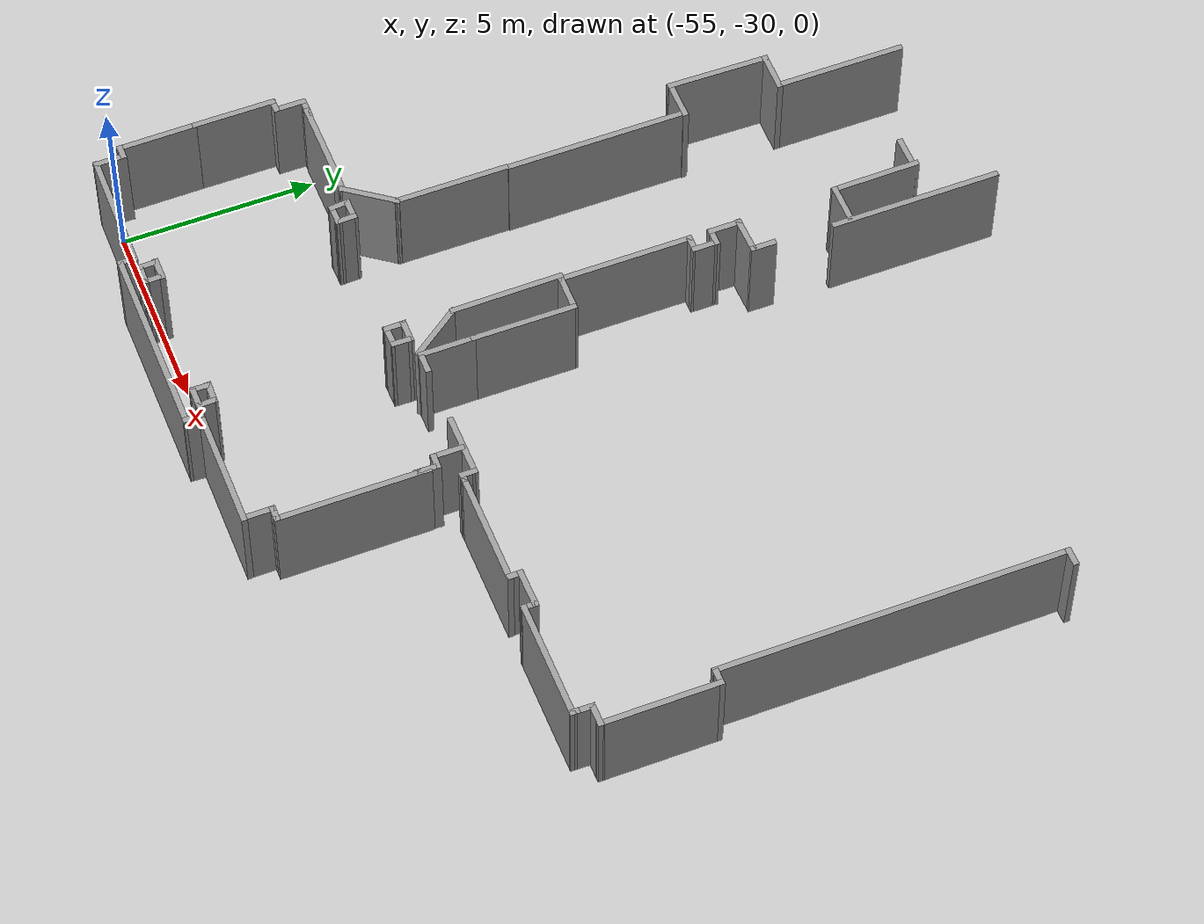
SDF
<sdf version="1.7">
 <model name="TD1-Mapa">
  <pose>-6.249136 -5.50363 0 0 -0 0</pose>
  <link name="Wall_1">
   <collision name="Wall_1_Collision">
    <geometry><box><size>4.431935 0.15 2.5</size></box></geometry>
    <pose>0 0 1.25 0 -0 0</pose>
   </collision>
   <visual name="Wall_1_Visual">
    <pose>0 0 1.25 0 -0 0</pose>
    <geometry><box><size>4.431935 0.15 2.5</size></box></geometry>
    <material>
     <script><uri>file://media/materials/scripts/gazebo.material</uri><name>Gazebo/Grey</name></script>
     <ambient>1 1 1 1</ambient>
    </material>
    <meta><layer>0</layer></meta>
   </visual>
   <pose>-41.074739 -6.4312363 0 0 -0 1.57083</pose>
  </link>
  <link name="Wall_104">
   <collision name="Wall_104_Collision">
    <geometry><box><size>2.919735 0.15 2.5</size></box></geometry>
    <pose>0 0 1.25 0 -0 0</pose>
   </collision>
   <visual name="Wall_104_Visual">
    <pose>0 0 1.25 0 -0 0</pose>
    <geometry><box><size>2.919735 0.15 2.5</size></box></geometry>
    <material>
     <script><uri>file://media/materials/scripts/gazebo.material</uri><name>Gazebo/Grey</name></script>
     <ambient>1 1 1 1</ambient>
    </material>
    <meta><layer>0</layer></meta>
   </visual>
   <pose>-42.06833 -16.77593 0 0 -0 -1.561431</pose>
  </link>
  <link name="Wall_105">
   <collision name="Wall_105_Collision">
    <geometry><box><size>1.637439 0.15 2.5</size></box></geometry>
    <pose>0 0 1.25 0 -0 0</pose>
   </collision>
   <visual name="Wall_105_Visual">
    <pose>0 0 1.25 0 -0 0</pose>
    <geometry><box><size>1.637439 0.15 2.5</size></box></geometry>
    <material>
     <script><uri>file://media/materials/scripts/gazebo.material</uri><name>Gazebo/Grey</name></script>
     <ambient>1 1 1 1</ambient>
    </material>
    <meta><layer>0</layer></meta>
   </visual>
   <pose>-41.61323 -18.75873 0 0 -0 -0.9342383</pose>
  </link>
  <link name="Wall_107">
   <collision name="Wall_107_Collision">
    <geometry><box><size>0.671535 0.15 2.5</size></box></geometry>
    <pose>0 0 1.25 0 -0 0</pose>
   </collision>
   <visual name="Wall_107_Visual">
    <pose>0 0 1.25 0 -0 0</pose>
    <geometry><box><size>0.671535 0.15 2.5</size></box></geometry>
    <material>
     <script><uri>file://media/materials/scripts/gazebo.material</uri><name>Gazebo/Grey</name></script>
     <ambient>1 1 1 1</ambient>
    </material>
    <meta><layer>0</layer></meta>
   </visual>
   <pose>-46.76213 -19.38283 0 0 -0 -0.0499353</pose>
  </link>
  <link name="Wall_108">
   <collision name="Wall_108_Collision">
    <geometry><box><size>1.55433 0.15 2.5</size></box></geometry>
    <pose>0 0 1.25 0 -0 0</pose>
   </collision>
   <visual name="Wall_108_Visual">
    <pose>0 0 1.25 0 -0 0</pose>
    <geometry><box><size>1.55433 0.15 2.5</size></box></geometry>
    <material>
     <script><uri>file://media/materials/scripts/gazebo.material</uri><name>Gazebo/Grey</name></script>
     <ambient>1 1 1 1</ambient>
    </material>
    <meta><layer>0</layer></meta>
   </visual>
   <pose>-46.086 -18.83023 0 0 -0 0.9365353</pose>
  </link>
  <link name="Wall_109">
   <collision name="Wall_109_Collision">
    <geometry><box><size>2.984439 0.15 2.5</size></box></geometry>
    <pose>0 0 1.25 0 -0 0</pose>
   </collision>
   <visual name="Wall_109_Visual">
    <pose>0 0 1.25 0 -0 0</pose>
    <geometry><box><size>2.984439 0.15 2.5</size></box></geometry>
    <material>
     <script><uri>file://media/materials/scripts/gazebo.material</uri><name>Gazebo/Grey</name></script>
     <ambient>1 1 1 1</ambient>
    </material>
    <meta><layer>0</layer></meta>
   </visual>
   <pose>-45.66993 -16.84743 0 0 -0 1.57083</pose>
  </link>
  <link name="Wall_111">
   <collision name="Wall_111_Collision">
    <geometry><box><size>4.700738 0.15 2.5</size></box></geometry>
    <pose>0 0 1.25 0 -0 0</pose>
   </collision>
   <visual name="Wall_111_Visual">
    <pose>0 0 1.25 0 -0 0</pose>
    <geometry><box><size>4.700738 0.15 2.5</size></box></geometry>
    <material>
     <script><uri>file://media/materials/scripts/gazebo.material</uri><name>Gazebo/Grey</name></script>
     <ambient>1 1 1 1</ambient>
    </material>
    <meta><layer>0</layer></meta>
   </visual>
   <pose>-45.648 -13.03523 0 0 -0 1.57083</pose>
  </link>
  <link name="Wall_113">
   <collision name="Wall_113_Collision">
    <geometry><box><size>1.099532 0.15 2.5</size></box></geometry>
    <pose>0 0 1.25 0 -0 0</pose>
   </collision>
   <visual name="Wall_113_Visual">
    <pose>0 0 1.25 0 -0 0</pose>
    <geometry><box><size>1.099532 0.15 2.5</size></box></geometry>
    <material>
     <script><uri>file://media/materials/scripts/gazebo.material</uri><name>Gazebo/Grey</name></script>
     <ambient>1 1 1 1</ambient>
    </material>
    <meta><layer>0</layer></meta>
   </visual>
   <pose>-46.09663 -10.66883 0 0 -0 3.141539</pose>
  </link>
  <link name="Wall_114">
   <collision name="Wall_114_Collision">
    <geometry><box><size>2.686134 0.15 2.5</size></box></geometry>
    <pose>0 0 1.25 0 -0 0</pose>
   </collision>
   <visual name="Wall_114_Visual">
    <pose>0 0 1.25 0 -0 0</pose>
    <geometry><box><size>2.686134 0.15 2.5</size></box></geometry>
    <material>
     <script><uri>file://media/materials/scripts/gazebo.material</uri><name>Gazebo/Grey</name></script>
     <ambient>1 1 1 1</ambient>
    </material>
    <meta><layer>0</layer></meta>
   </visual>
   <pose>-46.54843 -9.400933 0 0 -0 1.552837</pose>
  </link>
  <link name="Wall_115">
   <collision name="Wall_115_Collision">
    <geometry><box><size>1.0744323 0.15 2.5</size></box></geometry>
    <pose>0 0 1.25 0 -0 0</pose>
   </collision>
   <visual name="Wall_115_Visual">
    <pose>0 0 1.25 0 -0 0</pose>
    <geometry><box><size>1.0744323 0.15 2.5</size></box></geometry>
    <material>
     <script><uri>file://media/materials/scripts/gazebo.material</uri><name>Gazebo/Grey</name></script>
     <ambient>1 1 1 1</ambient>
    </material>
    <meta><layer>0</layer></meta>
   </visual>
   <pose>-46.06363 -8.129536 0 0 -0 -0.006431</pose>
  </link>
  <link name="Wall_117">
   <collision name="Wall_117_Collision">
    <geometry><box><size>3.296832 0.15 2.5</size></box></geometry>
    <pose>0 0 1.25 0 -0 0</pose>
   </collision>
   <visual name="Wall_117_Visual">
    <pose>0 0 1.25 0 -0 0</pose>
    <geometry><box><size>3.296832 0.15 2.5</size></box></geometry>
    <material>
     <script><uri>file://media/materials/scripts/gazebo.material</uri><name>Gazebo/Grey</name></script>
     <ambient>1 1 1 1</ambient>
    </material>
    <meta><layer>0</layer></meta>
   </visual>
   <pose>-45.60853 -6.4315303 0 0 -0 1.57083</pose>
  </link>
  <link name="Wall_17">
   <collision name="Wall_17_Collision">
    <geometry><box><size>0.4964333 0.15 2.5</size></box></geometry>
    <pose>0 0 1.25 0 -0 0</pose>
   </collision>
   <visual name="Wall_17_Visual">
    <pose>0 0 1.25 0 -0 0</pose>
    <geometry><box><size>0.4964333 0.15 2.5</size></box></geometry>
    <material>
     <script><uri>file://media/materials/scripts/gazebo.material</uri><name>Gazebo/Grey</name></script>
     <ambient>1 1 1 1</ambient>
    </material>
    <meta><layer>0</layer></meta>
   </visual>
   <pose>-30.24243 -7.304738 0 0 -0 -3.134935</pose>
  </link>
  <link name="Wall_20">
   <collision name="Wall_20_Collision">
    <geometry><box><size>9 0.15 2.5</size></box></geometry>
    <pose>0 0 1.25 0 -0 0</pose>
   </collision>
   <visual name="Wall_20_Visual">
    <pose>0 0 1.25 0 -0 0</pose>
    <geometry><box><size>9 0.15 2.5</size></box></geometry>
    <material>
     <script><uri>file://media/materials/scripts/gazebo.material</uri><name>Gazebo/Grey</name></script>
     <ambient>1 1 1 1</ambient>
    </material>
    <meta><layer>0</layer></meta>
   </visual>
   <pose>-30.41513 -11.73093 0 0 -0 -1.57083</pose>
  </link>
  <link name="Wall_21">
   <collision name="Wall_21_Collision">
    <geometry><box><size>0.5 0.15 2.5</size></box></geometry>
    <pose>0 0 1.25 0 -0 0</pose>
   </collision>
   <visual name="Wall_21_Visual">
    <pose>0 0 1.25 0 -0 0</pose>
    <geometry><box><size>0.5 0.15 2.5</size></box></geometry>
    <material>
     <script><uri>file://media/materials/scripts/gazebo.material</uri><name>Gazebo/Grey</name></script>
     <ambient>1 1 1 1</ambient>
    </material>
    <meta><layer>0</layer></meta>
   </visual>
   <pose>-30.24013 -16.15593 0 0 -0 0</pose>
  </link>
  <link name="Wall_23">
   <collision name="Wall_23_Collision">
    <geometry><box><size>3.099538 0.15 2.5</size></box></geometry>
    <pose>0 0 1.25 0 -0 0</pose>
   </collision>
   <visual name="Wall_23_Visual">
    <pose>0 0 1.25 0 -0 0</pose>
    <geometry><box><size>3.099538 0.15 2.5</size></box></geometry>
    <material>
     <script><uri>file://media/materials/scripts/gazebo.material</uri><name>Gazebo/Grey</name></script>
     <ambient>1 1 1 1</ambient>
    </material>
    <meta><layer>0</layer></meta>
   </visual>
   <pose>-30.06363 -17.63073 0 0 -0 -1.569736</pose>
  </link>
  <link name="Wall_24">
   <collision name="Wall_24_Collision">
    <geometry><box><size>0.6344383 0.15 2.5</size></box></geometry>
    <pose>0 0 1.25 0 -0 0</pose>
   </collision>
   <visual name="Wall_24_Visual">
    <pose>0 0 1.25 0 -0 0</pose>
    <geometry><box><size>0.6344383 0.15 2.5</size></box></geometry>
    <material>
     <script><uri>file://media/materials/scripts/gazebo.material</uri><name>Gazebo/Grey</name></script>
     <ambient>1 1 1 1</ambient>
    </material>
    <meta><layer>0</layer></meta>
   </visual>
   <pose>-30.30433 -19.10553 0 0 -0 3.141539</pose>
  </link>
  <link name="Wall_25">
   <collision name="Wall_25_Collision">
    <geometry><box><size>0.5361313 0.15 2.5</size></box></geometry>
    <pose>0 0 1.25 0 -0 0</pose>
   </collision>
   <visual name="Wall_25_Visual">
    <pose>0 0 1.25 0 -0 0</pose>
    <geometry><box><size>0.5361313 0.15 2.5</size></box></geometry>
    <material>
     <script><uri>file://media/materials/scripts/gazebo.material</uri><name>Gazebo/Grey</name></script>
     <ambient>1 1 1 1</ambient>
    </material>
    <meta><layer>0</layer></meta>
   </visual>
   <pose>-30.55153 -19.29833 0 0 -0 -1.596433</pose>
  </link>
  <link name="Wall_26">
   <collision name="Wall_26_Collision">
    <geometry><box><size>0.25 0.15 2.5</size></box></geometry>
    <pose>0 0 1.25 0 -0 0</pose>
   </collision>
   <visual name="Wall_26_Visual">
    <pose>0 0 1.25 0 -0 0</pose>
    <geometry><box><size>0.25 0.15 2.5</size></box></geometry>
    <material>
     <script><uri>file://media/materials/scripts/gazebo.material</uri><name>Gazebo/Grey</name></script>
     <ambient>1 1 1 1</ambient>
    </material>
    <meta><layer>0</layer></meta>
   </visual>
   <pose>-30.55653 -19.54113 0 0 -0 -1.57083</pose>
  </link>
  <link name="Wall_27">
   <collision name="Wall_27_Collision">
    <geometry><box><size>3.165731 0.15 2.5</size></box></geometry>
    <pose>0 0 1.25 0 -0 0</pose>
   </collision>
   <visual name="Wall_27_Visual">
    <pose>0 0 1.25 0 -0 0</pose>
    <geometry><box><size>3.165731 0.15 2.5</size></box></geometry>
    <material>
     <script><uri>file://media/materials/scripts/gazebo.material</uri><name>Gazebo/Grey</name></script>
     <ambient>1 1 1 1</ambient>
    </material>
    <meta><layer>0</layer></meta>
   </visual>
   <pose>-32.06433 -19.59553 0 0 -0 -3.138639</pose>
  </link>
  <link name="Wall_28">
   <collision name="Wall_28_Collision">
    <geometry><box><size>0.4270323 0.15 2.5</size></box></geometry>
    <pose>0 0 1.25 0 -0 0</pose>
   </collision>
   <visual name="Wall_28_Visual">
    <pose>0 0 1.25 0 -0 0</pose>
    <geometry><box><size>0.4270323 0.15 2.5</size></box></geometry>
    <material>
     <script><uri>file://media/materials/scripts/gazebo.material</uri><name>Gazebo/Grey</name></script>
     <ambient>1 1 1 1</ambient>
    </material>
    <meta><layer>0</layer></meta>
   </visual>
   <pose>-33.56723 -19.46143 0 0 -0 1.53513</pose>
  </link>
  <link name="Wall_29">
   <collision name="Wall_29_Collision">
    <geometry><box><size>1.051531 0.15 2.5</size></box></geometry>
    <pose>0 0 1.25 0 -0 0</pose>
   </collision>
   <visual name="Wall_29_Visual">
    <pose>0 0 1.25 0 -0 0</pose>
    <geometry><box><size>1.051531 0.15 2.5</size></box></geometry>
    <material>
     <script><uri>file://media/materials/scripts/gazebo.material</uri><name>Gazebo/Grey</name></script>
     <ambient>1 1 1 1</ambient>
    </material>
    <meta><layer>0</layer></meta>
   </visual>
   <pose>-34.02283 -19.328 0 0 -0 -3.130633</pose>
  </link>
  <link name="Wall_30">
   <collision name="Wall_30_Collision">
    <geometry><box><size>0.4236353 0.15 2.5</size></box></geometry>
    <pose>0 0 1.25 0 -0 0</pose>
   </collision>
   <visual name="Wall_30_Visual">
    <pose>0 0 1.25 0 -0 0</pose>
    <geometry><box><size>0.4236353 0.15 2.5</size></box></geometry>
    <material>
     <script><uri>file://media/materials/scripts/gazebo.material</uri><name>Gazebo/Grey</name></script>
     <ambient>1 1 1 1</ambient>
    </material>
    <meta><layer>0</layer></meta>
   </visual>
   <pose>-34.47313 -19.46643 0 0 -0 -1.567332</pose>
  </link>
  <link name="Wall_34">
   <collision name="Wall_34_Collision">
    <geometry><box><size>3.0748333 0.15 2.5</size></box></geometry>
    <pose>0 0 1.25 0 -0 0</pose>
   </collision>
   <visual name="Wall_34_Visual">
    <pose>0 0 1.25 0 -0 0</pose>
    <geometry><box><size>3.0748333 0.15 2.5</size></box></geometry>
    <material>
     <script><uri>file://media/materials/scripts/gazebo.material</uri><name>Gazebo/Grey</name></script>
     <ambient>1 1 1 1</ambient>
    </material>
    <meta><layer>0</layer></meta>
   </visual>
   <pose>-35.92373 -19.62153 0 0 -0 -3.137733</pose>
  </link>
  <link name="Wall_35">
   <collision name="Wall_35_Collision">
    <geometry><box><size>0.2743363 0.15 2.5</size></box></geometry>
    <pose>0 0 1.25 0 -0 0</pose>
   </collision>
   <visual name="Wall_35_Visual">
    <pose>0 0 1.25 0 -0 0</pose>
    <geometry><box><size>0.2743363 0.15 2.5</size></box></geometry>
    <material>
     <script><uri>file://media/materials/scripts/gazebo.material</uri><name>Gazebo/Grey</name></script>
     <ambient>1 1 1 1</ambient>
    </material>
    <meta><layer>0</layer></meta>
   </visual>
   <pose>-37.45 -19.62723 0 0 -0 3.141539</pose>
  </link>
  <link name="Wall_36">
   <collision name="Wall_36_Collision">
    <geometry><box><size>0.4553323 0.15 2.5</size></box></geometry>
    <pose>0 0 1.25 0 -0 0</pose>
   </collision>
   <visual name="Wall_36_Visual">
    <pose>0 0 1.25 0 -0 0</pose>
    <geometry><box><size>0.4553323 0.15 2.5</size></box></geometry>
    <material>
     <script><uri>file://media/materials/scripts/gazebo.material</uri><name>Gazebo/Grey</name></script>
     <ambient>1 1 1 1</ambient>
    </material>
    <meta><layer>0</layer></meta>
   </visual>
   <pose>-37.51223 -19.47463 0 0 -0 1.57083</pose>
  </link>
  <link name="Wall_38">
   <collision name="Wall_38_Collision">
    <geometry><box><size>1.714731 0.15 2.5</size></box></geometry>
    <pose>0 0 1.25 0 -0 0</pose>
   </collision>
   <visual name="Wall_38_Visual">
    <pose>0 0 1.25 0 -0 0</pose>
    <geometry><box><size>1.714731 0.15 2.5</size></box></geometry>
    <material>
     <script><uri>file://media/materials/scripts/gazebo.material</uri><name>Gazebo/Grey</name></script>
     <ambient>1 1 1 1</ambient>
    </material>
    <meta><layer>0</layer></meta>
   </visual>
   <pose>-38.29463 -19.32613 0 0 -0 -3.136232</pose>
  </link>
  <link name="Wall_40">
   <collision name="Wall_40_Collision">
    <geometry><box><size>0.6135353 0.15 2.5</size></box></geometry>
    <pose>0 0 1.25 0 -0 0</pose>
   </collision>
   <visual name="Wall_40_Visual">
    <pose>0 0 1.25 0 -0 0</pose>
    <geometry><box><size>0.6135353 0.15 2.5</size></box></geometry>
    <material>
     <script><uri>file://media/materials/scripts/gazebo.material</uri><name>Gazebo/Grey</name></script>
     <ambient>1 1 1 1</ambient>
    </material>
    <meta><layer>0</layer></meta>
   </visual>
   <pose>-40.88033 -19.33033 0 0 -0 3.141539</pose>
  </link>
  <link name="Wall_41">
   <collision name="Wall_41_Collision">
    <geometry><box><size>1.5 0.15 2.5</size></box></geometry>
    <pose>0 0 1.25 0 -0 0</pose>
   </collision>
   <visual name="Wall_41_Visual">
    <pose>0 0 1.25 0 -0 0</pose>
    <geometry><box><size>1.5 0.15 2.5</size></box></geometry>
    <material>
     <script><uri>file://media/materials/scripts/gazebo.material</uri><name>Gazebo/Grey</name></script>
     <ambient>1 1 1 1</ambient>
    </material>
    <meta><layer>0</layer></meta>
   </visual>
   <pose>-41.112 -18.65533 0 0 -0 1.57083</pose>
  </link>
  <link name="Wall_43">
   <collision name="Wall_43_Collision">
    <geometry><box><size>2.726833 0.15 2.5</size></box></geometry>
    <pose>0 0 1.25 0 -0 0</pose>
   </collision>
   <visual name="Wall_43_Visual">
    <pose>0 0 1.25 0 -0 0</pose>
    <geometry><box><size>2.726833 0.15 2.5</size></box></geometry>
    <material>
     <script><uri>file://media/materials/scripts/gazebo.material</uri><name>Gazebo/Grey</name></script>
     <ambient>1 1 1 1</ambient>
    </material>
    <meta><layer>0</layer></meta>
   </visual>
   <pose>-41.10653 -16.692 0 0 -0 1.566437</pose>
  </link>
  <link name="Wall_44">
   <collision name="Wall_44_Collision">
    <geometry><box><size>1.036937 0.15 2.5</size></box></geometry>
    <pose>0 0 1.25 0 -0 0</pose>
   </collision>
   <visual name="Wall_44_Visual">
    <pose>0 0 1.25 0 -0 0</pose>
    <geometry><box><size>1.036937 0.15 2.5</size></box></geometry>
    <material>
     <script><uri>file://media/materials/scripts/gazebo.material</uri><name>Gazebo/Grey</name></script>
     <ambient>1 1 1 1</ambient>
    </material>
    <meta><layer>0</layer></meta>
   </visual>
   <pose>-41.54443 -15.39793 0 0 -0 3.128737</pose>
  </link>
  <link name="Wall_46">
   <collision name="Wall_46_Collision">
    <geometry><box><size>3.5 0.15 2.5</size></box></geometry>
    <pose>0 0 1.25 0 -0 0</pose>
   </collision>
   <visual name="Wall_46_Visual">
    <pose>0 0 1.25 0 -0 0</pose>
    <geometry><box><size>3.5 0.15 2.5</size></box></geometry>
    <material>
     <script><uri>file://media/materials/scripts/gazebo.material</uri><name>Gazebo/Grey</name></script>
     <ambient>1 1 1 1</ambient>
    </material>
    <meta><layer>0</layer></meta>
   </visual>
   <pose>-41.98783 -13.71723 0 0 -0 1.57083</pose>
  </link>
  <link name="Wall_47">
   <collision name="Wall_47_Collision">
    <geometry><box><size>0.5 0.15 2.5</size></box></geometry>
    <pose>0 0 1.25 0 -0 0</pose>
   </collision>
   <visual name="Wall_47_Visual">
    <pose>0 0 1.25 0 -0 0</pose>
    <geometry><box><size>0.5 0.15 2.5</size></box></geometry>
    <material>
     <script><uri>file://media/materials/scripts/gazebo.material</uri><name>Gazebo/Grey</name></script>
     <ambient>1 1 1 1</ambient>
    </material>
    <meta><layer>0</layer></meta>
   </visual>
   <pose>-41.81283 -12.04223 0 0 -0 0</pose>
  </link>
  <link name="Wall_48">
   <collision name="Wall_48_Collision">
    <geometry><box><size>0.7220323 0.15 2.5</size></box></geometry>
    <pose>0 0 1.25 0 -0 0</pose>
   </collision>
   <visual name="Wall_48_Visual">
    <pose>0 0 1.25 0 -0 0</pose>
    <geometry><box><size>0.7220323 0.15 2.5</size></box></geometry>
    <material>
     <script><uri>file://media/materials/scripts/gazebo.material</uri><name>Gazebo/Grey</name></script>
     <ambient>1 1 1 1</ambient>
    </material>
    <meta><layer>0</layer></meta>
   </visual>
   <pose>-41.63733 -11.75663 0 0 -0 1.569134</pose>
  </link>
  <link name="Wall_49">
   <collision name="Wall_49_Collision">
    <geometry><box><size>0.51093 0.15 2.5</size></box></geometry>
    <pose>0 0 1.25 0 -0 0</pose>
   </collision>
   <visual name="Wall_49_Visual">
    <pose>0 0 1.25 0 -0 0</pose>
    <geometry><box><size>0.51093 0.15 2.5</size></box></geometry>
    <material>
     <script><uri>file://media/materials/scripts/gazebo.material</uri><name>Gazebo/Grey</name></script>
     <ambient>1 1 1 1</ambient>
    </material>
    <meta><layer>0</layer></meta>
   </visual>
   <pose>-41.81733 -11.471 0 0 -0 3.141539</pose>
  </link>
  <link name="Wall_52">
   <collision name="Wall_52_Collision">
    <geometry><box><size>0.8899303 0.15 2.5</size></box></geometry>
    <pose>0 0 1.25 0 -0 0</pose>
   </collision>
   <visual name="Wall_52_Visual">
    <pose>0 0 1.25 0 -0 0</pose>
    <geometry><box><size>0.8899303 0.15 2.5</size></box></geometry>
    <material>
     <script><uri>file://media/materials/scripts/gazebo.material</uri><name>Gazebo/Grey</name></script>
     <ambient>1 1 1 1</ambient>
    </material>
    <meta><layer>0</layer></meta>
   </visual>
   <pose>-41.99783 -11.10153 0 0 -0 1.57083</pose>
  </link>
  <link name="Wall_53">
   <collision name="Wall_53_Collision">
    <geometry><box><size>1.015538 0.15 2.5</size></box></geometry>
    <pose>0 0 1.25 0 -0 0</pose>
   </collision>
   <visual name="Wall_53_Visual">
    <pose>0 0 1.25 0 -0 0</pose>
    <geometry><box><size>1.015538 0.15 2.5</size></box></geometry>
    <material>
     <script><uri>file://media/materials/scripts/gazebo.material</uri><name>Gazebo/Grey</name></script>
     <ambient>1 1 1 1</ambient>
    </material>
    <meta><layer>0</layer></meta>
   </visual>
   <pose>-41.58233 -10.72333 0 0 -0 0.019938</pose>
  </link>
  <link name="Wall_54">
   <collision name="Wall_54_Collision">
    <geometry><box><size>0.6740363 0.15 2.5</size></box></geometry>
    <pose>0 0 1.25 0 -0 0</pose>
   </collision>
   <visual name="Wall_54_Visual">
    <pose>0 0 1.25 0 -0 0</pose>
    <geometry><box><size>0.6740363 0.15 2.5</size></box></geometry>
    <material>
     <script><uri>file://media/materials/scripts/gazebo.material</uri><name>Gazebo/Grey</name></script>
     <ambient>1 1 1 1</ambient>
    </material>
    <meta><layer>0</layer></meta>
   </visual>
   <pose>-41.13123 -10.45263 0 0 -0 1.566439</pose>
  </link>
  <link name="Wall_56">
   <collision name="Wall_56_Collision">
    <geometry><box><size>1.0743313 0.15 2.5</size></box></geometry>
    <pose>0 0 1.25 0 -0 0</pose>
   </collision>
   <visual name="Wall_56_Visual">
    <pose>0 0 1.25 0 -0 0</pose>
    <geometry><box><size>1.0743313 0.15 2.5</size></box></geometry>
    <material>
     <script><uri>file://media/materials/scripts/gazebo.material</uri><name>Gazebo/Grey</name></script>
     <ambient>1 1 1 1</ambient>
    </material>
    <meta><layer>0</layer></meta>
   </visual>
   <pose>-41.61313 -8.14323 0 0 -0 3.141539</pose>
  </link>
  <link name="Wall_58">
   <collision name="Wall_58_Collision">
    <geometry><box><size>2.324 0.15 2.5</size></box></geometry>
    <pose>0 0 1.25 0 -0 0</pose>
   </collision>
   <visual name="Wall_58_Visual">
    <pose>0 0 1.25 0 -0 0</pose>
    <geometry><box><size>2.324 0.15 2.5</size></box></geometry>
    <material>
     <script><uri>file://media/materials/scripts/gazebo.material</uri><name>Gazebo/Grey</name></script>
     <ambient>1 1 1 1</ambient>
    </material>
    <meta><layer>0</layer></meta>
   </visual>
   <pose>-42.087 -7.056237 0 0 -0 1.582139</pose>
  </link>
  <link name="Wall_61">
   <collision name="Wall_61_Collision">
    <geometry><box><size>0.9009333 0.15 2.5</size></box></geometry>
    <pose>0 0 1.25 0 -0 0</pose>
   </collision>
   <visual name="Wall_61_Visual">
    <pose>0 0 1.25 0 -0 0</pose>
    <geometry><box><size>0.9009333 0.15 2.5</size></box></geometry>
    <material>
     <script><uri>file://media/materials/scripts/gazebo.material</uri><name>Gazebo/Grey</name></script>
     <ambient>1 1 1 1</ambient>
    </material>
    <meta><layer>0</layer></meta>
   </visual>
   <pose>-42.47453 -6.045837 0 0 -0 0.0032333</pose>
  </link>
  <link name="Wall_814">
   <collision name="Wall_814_Collision">
    <geometry><box><size>2.256836 0.15 2.5</size></box></geometry>
    <pose>0 0 1.25 0 -0 0</pose>
   </collision>
   <visual name="Wall_814_Visual">
    <pose>0 0 1.25 0 -0 0</pose>
    <geometry><box><size>2.256836 0.15 2.5</size></box></geometry>
    <material>
     <script><uri>file://media/materials/scripts/gazebo.material</uri><name>Gazebo/Grey</name></script>
     <ambient>1 1 1 1</ambient>
    </material>
    <meta><layer>0</layer></meta>
   </visual>
   <pose>-48.074535 -19.37593 0 0 -0 0.0057343</pose>
  </link>
  <link name="Wall_816">
   <collision name="Wall_816_Collision">
    <geometry><box><size>0.5029383 0.15 2.5</size></box></geometry>
    <pose>0 0 1.25 0 -0 0</pose>
   </collision>
   <visual name="Wall_816_Visual">
    <pose>0 0 1.25 0 -0 0</pose>
    <geometry><box><size>0.5029383 0.15 2.5</size></box></geometry>
    <material>
     <script><uri>file://media/materials/scripts/gazebo.material</uri><name>Gazebo/Grey</name></script>
     <ambient>1 1 1 1</ambient>
    </material>
    <meta><layer>0</layer></meta>
   </visual>
   <pose>-49.19283 -19.36693 0 0 -0 0</pose>
  </link>
  <link name="Wall_818">
   <collision name="Wall_818_Collision">
    <geometry><box><size>0.8559363 0.15 2.5</size></box></geometry>
    <pose>0 0 1.25 0 -0 0</pose>
   </collision>
   <visual name="Wall_818_Visual">
    <pose>0 0 1.25 0 -0 0</pose>
    <geometry><box><size>0.8559363 0.15 2.5</size></box></geometry>
    <material>
     <script><uri>file://media/materials/scripts/gazebo.material</uri><name>Gazebo/Grey</name></script>
     <ambient>1 1 1 1</ambient>
    </material>
    <meta><layer>0</layer></meta>
   </visual>
   <pose>-49.44443 -19.72743 0 0 -0 -1.57083</pose>
  </link>
  <link name="Wall_819">
   <collision name="Wall_819_Collision">
    <geometry><box><size>0.4203363 0.15 2.5</size></box></geometry>
    <pose>0 0 1.25 0 -0 0</pose>
   </collision>
   <visual name="Wall_819_Visual">
    <pose>0 0 1.25 0 -0 0</pose>
    <geometry><box><size>0.4203363 0.15 2.5</size></box></geometry>
    <material>
     <script><uri>file://media/materials/scripts/gazebo.material</uri><name>Gazebo/Grey</name></script>
     <ambient>1 1 1 1</ambient>
    </material>
    <meta><layer>0</layer></meta>
   </visual>
   <pose>-49.57963 -20.08043 0 0 -0 3.141539</pose>
  </link>
  <link name="Wall_820">
   <collision name="Wall_820_Collision">
    <geometry><box><size>2.177737 0.15 2.5</size></box></geometry>
    <pose>0 0 1.25 0 -0 0</pose>
   </collision>
   <visual name="Wall_820_Visual">
    <pose>0 0 1.25 0 -0 0</pose>
    <geometry><box><size>2.177737 0.15 2.5</size></box></geometry>
    <material>
     <script><uri>file://media/materials/scripts/gazebo.material</uri><name>Gazebo/Grey</name></script>
     <ambient>1 1 1 1</ambient>
    </material>
    <meta><layer>0</layer></meta>
   </visual>
   <pose>-49.71483 -21.09433 0 0 -0 -1.57083</pose>
  </link>
  <link name="Wall_823">
   <collision name="Wall_823_Collision">
    <geometry><box><size>0.15 0.15 2.5</size></box></geometry>
    <pose>0 0 1.25 0 -0 0</pose>
   </collision>
   <visual name="Wall_823_Visual">
    <pose>0 0 1.25 0 -0 0</pose>
    <geometry><box><size>0.15 0.15 2.5</size></box></geometry>
    <material>
     <script><uri>file://media/materials/scripts/gazebo.material</uri><name>Gazebo/Grey</name></script>
     <ambient>1 1 1 1</ambient>
    </material>
    <meta><layer>0</layer></meta>
   </visual>
   <pose>-49.69973 -24.074538 0 0 -0 0</pose>
  </link>
  <link name="Wall_825">
   <collision name="Wall_825_Collision">
    <geometry><box><size>2.117734 0.15 2.5</size></box></geometry>
    <pose>0 0 1.25 0 -0 0</pose>
   </collision>
   <visual name="Wall_825_Visual">
    <pose>0 0 1.25 0 -0 0</pose>
    <geometry><box><size>2.117734 0.15 2.5</size></box></geometry>
    <material>
     <script><uri>file://media/materials/scripts/gazebo.material</uri><name>Gazebo/Grey</name></script>
     <ambient>1 1 1 1</ambient>
    </material>
    <meta><layer>0</layer></meta>
   </visual>
   <pose>-49.70723 -23.092 0 0 -0 -1.563136</pose>
  </link>
  <link name="Wall_826">
   <collision name="Wall_826_Collision">
    <geometry><box><size>0.410034 0.15 2.5</size></box></geometry>
    <pose>0 0 1.25 0 -0 0</pose>
   </collision>
   <visual name="Wall_826_Visual">
    <pose>0 0 1.25 0 -0 0</pose>
    <geometry><box><size>0.410034 0.15 2.5</size></box></geometry>
    <material>
     <script><uri>file://media/materials/scripts/gazebo.material</uri><name>Gazebo/Grey</name></script>
     <ambient>1 1 1 1</ambient>
    </material>
    <meta><layer>0</layer></meta>
   </visual>
   <pose>-49.56973 -24.074535 0 0 -0 0.0024373</pose>
  </link>
  <link name="Wall_827">
   <collision name="Wall_827_Collision">
    <geometry><box><size>0.8423373 0.15 2.5</size></box></geometry>
    <pose>0 0 1.25 0 -0 0</pose>
   </collision>
   <visual name="Wall_827_Visual">
    <pose>0 0 1.25 0 -0 0</pose>
    <geometry><box><size>0.8423373 0.15 2.5</size></box></geometry>
    <material>
     <script><uri>file://media/materials/scripts/gazebo.material</uri><name>Gazebo/Grey</name></script>
     <ambient>1 1 1 1</ambient>
    </material>
    <meta><layer>0</layer></meta>
   </visual>
   <pose>-49.431937 -24.42133 0 0 -0 -1.57083</pose>
  </link>
  <link name="Wall_828">
   <collision name="Wall_828_Collision">
    <geometry><box><size>3.258834 0.15 2.5</size></box></geometry>
    <pose>0 0 1.25 0 -0 0</pose>
   </collision>
   <visual name="Wall_828_Visual">
    <pose>0 0 1.25 0 -0 0</pose>
    <geometry><box><size>3.258834 0.15 2.5</size></box></geometry>
    <material>
     <script><uri>file://media/materials/scripts/gazebo.material</uri><name>Gazebo/Grey</name></script>
     <ambient>1 1 1 1</ambient>
    </material>
    <meta><layer>0</layer></meta>
   </visual>
   <pose>-47.88543 -24.787 0 0 -0 -0.0126303</pose>
  </link>
  <link name="Wall_829">
   <collision name="Wall_829_Collision">
    <geometry><box><size>0.5028393 0.15 2.5</size></box></geometry>
    <pose>0 0 1.25 0 -0 0</pose>
   </collision>
   <visual name="Wall_829_Visual">
    <pose>0 0 1.25 0 -0 0</pose>
    <geometry><box><size>0.5028393 0.15 2.5</size></box></geometry>
    <material>
     <script><uri>file://media/materials/scripts/gazebo.material</uri><name>Gazebo/Grey</name></script>
     <ambient>1 1 1 1</ambient>
    </material>
    <meta><layer>0</layer></meta>
   </visual>
   <pose>-46.33113 -24.983 0 0 -0 -1.57083</pose>
  </link>
  <link name="Wall_830">
   <collision name="Wall_830_Collision">
    <geometry><box><size>5.113239 0.15 2.5</size></box></geometry>
    <pose>0 0 1.25 0 -0 0</pose>
   </collision>
   <visual name="Wall_830_Visual">
    <pose>0 0 1.25 0 -0 0</pose>
    <geometry><box><size>5.113239 0.15 2.5</size></box></geometry>
    <material>
     <script><uri>file://media/materials/scripts/gazebo.material</uri><name>Gazebo/Grey</name></script>
     <ambient>1 1 1 1</ambient>
    </material>
    <meta><layer>0</layer></meta>
   </visual>
   <pose>-43.84953 -25.15933 0 0 -0 0</pose>
  </link>
  <link name="Wall_831">
   <collision name="Wall_831_Collision">
    <geometry><box><size>0.5287373 0.15 2.5</size></box></geometry>
    <pose>0 0 1.25 0 -0 0</pose>
   </collision>
   <visual name="Wall_831_Visual">
    <pose>0 0 1.25 0 -0 0</pose>
    <geometry><box><size>0.5287373 0.15 2.5</size></box></geometry>
    <material>
     <script><uri>file://media/materials/scripts/gazebo.material</uri><name>Gazebo/Grey</name></script>
     <ambient>1 1 1 1</ambient>
    </material>
    <meta><layer>0</layer></meta>
   </visual>
   <pose>-41.36133 -24.96993 0 0 -0 1.536333</pose>
  </link>
  <link name="Wall_832">
   <collision name="Wall_832_Collision">
    <geometry><box><size>3.271638 0.15 2.5</size></box></geometry>
    <pose>0 0 1.25 0 -0 0</pose>
   </collision>
   <visual name="Wall_832_Visual">
    <pose>0 0 1.25 0 -0 0</pose>
    <geometry><box><size>3.271638 0.15 2.5</size></box></geometry>
    <material>
     <script><uri>file://media/materials/scripts/gazebo.material</uri><name>Gazebo/Grey</name></script>
     <ambient>1 1 1 1</ambient>
    </material>
    <meta><layer>0</layer></meta>
   </visual>
   <pose>-39.79393 -24.787 0 0 -0 -0.0041383</pose>
  </link>
  <link name="Wall_833">
   <collision name="Wall_833_Collision">
    <geometry><box><size>0.868439 0.15 2.5</size></box></geometry>
    <pose>0 0 1.25 0 -0 0</pose>
   </collision>
   <visual name="Wall_833_Visual">
    <pose>0 0 1.25 0 -0 0</pose>
    <geometry><box><size>0.868439 0.15 2.5</size></box></geometry>
    <material>
     <script><uri>file://media/materials/scripts/gazebo.material</uri><name>Gazebo/Grey</name></script>
     <ambient>1 1 1 1</ambient>
    </material>
    <meta><layer>0</layer></meta>
   </visual>
   <pose>-38.24313 -24.431434 0 0 -0 1.57083</pose>
  </link>
  <link name="Wall_834">
   <collision name="Wall_834_Collision">
    <geometry><box><size>0.43173333 0.15 2.5</size></box></geometry>
    <pose>0 0 1.25 0 -0 0</pose>
   </collision>
   <visual name="Wall_834_Visual">
    <pose>0 0 1.25 0 -0 0</pose>
    <geometry><box><size>0.43173333 0.15 2.5</size></box></geometry>
    <material>
     <script><uri>file://media/materials/scripts/gazebo.material</uri><name>Gazebo/Grey</name></script>
     <ambient>1 1 1 1</ambient>
    </material>
    <meta><layer>0</layer></meta>
   </visual>
   <pose>-38.08943 -24.074532 0 0 -0 0</pose>
  </link>
  <link name="Wall_835">
   <collision name="Wall_835_Collision">
    <geometry><box><size>3.911636 0.15 2.5</size></box></geometry>
    <pose>0 0 1.25 0 -0 0</pose>
   </collision>
   <visual name="Wall_835_Visual">
    <pose>0 0 1.25 0 -0 0</pose>
    <geometry><box><size>3.911636 0.15 2.5</size></box></geometry>
    <material>
     <script><uri>file://media/materials/scripts/gazebo.material</uri><name>Gazebo/Grey</name></script>
     <ambient>1 1 1 1</ambient>
    </material>
    <meta><layer>0</layer></meta>
   </visual>
   <pose>-37.94573 -22.19443 0 0 -0 1.57083</pose>
  </link>
  <link name="Wall_837">
   <collision name="Wall_837_Collision">
    <geometry><box><size>0.8427343 0.15 2.5</size></box></geometry>
    <pose>0 0 1.25 0 -0 0</pose>
   </collision>
   <visual name="Wall_837_Visual">
    <pose>0 0 1.25 0 -0 0</pose>
    <geometry><box><size>0.8427343 0.15 2.5</size></box></geometry>
    <material>
     <script><uri>file://media/materials/scripts/gazebo.material</uri><name>Gazebo/Grey</name></script>
     <ambient>1 1 1 1</ambient>
    </material>
    <meta><layer>0</layer></meta>
   </visual>
   <pose>-38.24623 -19.71933 0 0 -0 -1.57083</pose>
  </link>
  <link name="Wall_838">
   <collision name="Wall_838_Collision">
    <geometry><box><size>0.43173333 0.15 2.5</size></box></geometry>
    <pose>0 0 1.25 0 -0 0</pose>
   </collision>
   <visual name="Wall_838_Visual">
    <pose>0 0 1.25 0 -0 0</pose>
    <geometry><box><size>0.43173333 0.15 2.5</size></box></geometry>
    <material>
     <script><uri>file://media/materials/scripts/gazebo.material</uri><name>Gazebo/Grey</name></script>
     <ambient>1 1 1 1</ambient>
    </material>
    <meta><layer>0</layer></meta>
   </visual>
   <pose>-38.10253 -20.074139 0 0 -0 -0.0454323</pose>
  </link>
  <link name="Wall_839">
   <collision name="Wall_839_Collision">
    <geometry><box><size>0.6731303 0.15 2.5</size></box></geometry>
    <pose>0 0 1.25 0 -0 0</pose>
   </collision>
   <visual name="Wall_839_Visual">
    <pose>0 0 1.25 0 -0 0</pose>
    <geometry><box><size>0.6731303 0.15 2.5</size></box></geometry>
    <material>
     <script><uri>file://media/materials/scripts/gazebo.material</uri><name>Gazebo/Grey</name></script>
     <ambient>1 1 1 1</ambient>
    </material>
    <meta><layer>0</layer></meta>
   </visual>
   <pose>-37.96533 -20.33973 0 0 -0 -1.595739</pose>
  </link>
  <link name="Wall_841">
   <collision name="Wall_841_Collision">
    <geometry><box><size>0.6475373 0.15 2.5</size></box></geometry>
    <pose>0 0 1.25 0 -0 0</pose>
   </collision>
   <visual name="Wall_841_Visual">
    <pose>0 0 1.25 0 -0 0</pose>
    <geometry><box><size>0.6475373 0.15 2.5</size></box></geometry>
    <material>
     <script><uri>file://media/materials/scripts/gazebo.material</uri><name>Gazebo/Grey</name></script>
     <ambient>1 1 1 1</ambient>
    </material>
    <meta><layer>0</layer></meta>
   </visual>
   <pose>-41.88753 -19.40143 0 0 -0 -0.0149323</pose>
  </link>
  <link name="Wall_842">
   <collision name="Wall_842_Collision">
    <geometry><box><size>0.5733323 0.15 2.5</size></box></geometry>
    <pose>0 0 1.25 0 -0 0</pose>
   </collision>
   <visual name="Wall_842_Visual">
    <pose>0 0 1.25 0 -0 0</pose>
    <geometry><box><size>0.5733323 0.15 2.5</size></box></geometry>
    <material>
     <script><uri>file://media/materials/scripts/gazebo.material</uri><name>Gazebo/Grey</name></script>
     <ambient>1 1 1 1</ambient>
    </material>
    <meta><layer>0</layer></meta>
   </visual>
   <pose>-41.64253 -19.61683 0 0 -0 -1.588334</pose>
  </link>
  <link name="Wall_843">
   <collision name="Wall_843_Collision">
    <geometry><box><size>0.6327323 0.15 2.5</size></box></geometry>
    <pose>0 0 1.25 0 -0 0</pose>
   </collision>
   <visual name="Wall_843_Visual">
    <pose>0 0 1.25 0 -0 0</pose>
    <geometry><box><size>0.6327323 0.15 2.5</size></box></geometry>
    <material>
     <script><uri>file://media/materials/scripts/gazebo.material</uri><name>Gazebo/Grey</name></script>
     <ambient>1 1 1 1</ambient>
    </material>
    <meta><layer>0</layer></meta>
   </visual>
   <pose>-41.88753 -19.83213 0 0 -0 -3.126231</pose>
  </link>
  <link name="Wall_844">
   <collision name="Wall_844_Collision">
    <geometry><box><size>0.5658333 0.15 2.5</size></box></geometry>
    <pose>0 0 1.25 0 -0 0</pose>
   </collision>
   <visual name="Wall_844_Visual">
    <pose>0 0 1.25 0 -0 0</pose>
    <geometry><box><size>0.5658333 0.15 2.5</size></box></geometry>
    <material>
     <script><uri>file://media/materials/scripts/gazebo.material</uri><name>Gazebo/Grey</name></script>
     <ambient>1 1 1 1</ambient>
    </material>
    <meta><layer>0</layer></meta>
   </visual>
   <pose>-42.12883 -19.62793 0 0 -0 1.57083</pose>
  </link>
  <link name="Wall_846">
   <collision name="Wall_846_Collision">
    <geometry><box><size>0.6106333 0.15 2.5</size></box></geometry>
    <pose>0 0 1.25 0 -0 0</pose>
   </collision>
   <visual name="Wall_846_Visual">
    <pose>0 0 1.25 0 -0 0</pose>
    <geometry><box><size>0.6106333 0.15 2.5</size></box></geometry>
    <material>
     <script><uri>file://media/materials/scripts/gazebo.material</uri><name>Gazebo/Grey</name></script>
     <ambient>1 1 1 1</ambient>
    </material>
    <meta><layer>0</layer></meta>
   </visual>
   <pose>-45.83433 -19.41633 0 0 -0 0.0161323</pose>
  </link>
  <link name="Wall_847">
   <collision name="Wall_847_Collision">
    <geometry><box><size>0.5586383 0.15 2.5</size></box></geometry>
    <pose>0 0 1.25 0 -0 0</pose>
   </collision>
   <visual name="Wall_847_Visual">
    <pose>0 0 1.25 0 -0 0</pose>
    <geometry><box><size>0.5586383 0.15 2.5</size></box></geometry>
    <material>
     <script><uri>file://media/materials/scripts/gazebo.material</uri><name>Gazebo/Grey</name></script>
     <ambient>1 1 1 1</ambient>
    </material>
    <meta><layer>0</layer></meta>
   </visual>
   <pose>-45.59663 -19.61683 0 0 -0 -1.534435</pose>
  </link>
  <link name="Wall_848">
   <collision name="Wall_848_Collision">
    <geometry><box><size>0.5881373 0.15 2.5</size></box></geometry>
    <pose>0 0 1.25 0 -0 0</pose>
   </collision>
   <visual name="Wall_848_Visual">
    <pose>0 0 1.25 0 -0 0</pose>
    <geometry><box><size>0.5881373 0.15 2.5</size></box></geometry>
    <material>
     <script><uri>file://media/materials/scripts/gazebo.material</uri><name>Gazebo/Grey</name></script>
     <ambient>1 1 1 1</ambient>
    </material>
    <meta><layer>0</layer></meta>
   </visual>
   <pose>-45.80833 -19.82473 0 0 -0 -3.124635</pose>
  </link>
  <link name="Wall_849">
   <collision name="Wall_849_Collision">
    <geometry><box><size>0.492837 0.15 2.5</size></box></geometry>
    <pose>0 0 1.25 0 -0 0</pose>
   </collision>
   <visual name="Wall_849_Visual">
    <pose>0 0 1.25 0 -0 0</pose>
    <geometry><box><size>0.492837 0.15 2.5</size></box></geometry>
    <material>
     <script><uri>file://media/materials/scripts/gazebo.material</uri><name>Gazebo/Grey</name></script>
     <ambient>1 1 1 1</ambient>
    </material>
    <meta><layer>0</layer></meta>
   </visual>
   <pose>-46.04963 -19.65763 0 0 -0 1.657533</pose>
  </link>
  <link name="Wall_851">
   <collision name="Wall_851_Collision">
    <geometry><box><size>0.6327323 0.15 2.5</size></box></geometry>
    <pose>0 0 1.25 0 -0 0</pose>
   </collision>
   <visual name="Wall_851_Visual">
    <pose>0 0 1.25 0 -0 0</pose>
    <geometry><box><size>0.6327323 0.15 2.5</size></box></geometry>
    <material>
     <script><uri>file://media/materials/scripts/gazebo.material</uri><name>Gazebo/Grey</name></script>
     <ambient>1 1 1 1</ambient>
    </material>
    <meta><layer>0</layer></meta>
   </visual>
   <pose>-45.82313 -24.35063 0 0 -0 0</pose>
  </link>
  <link name="Wall_852">
   <collision name="Wall_852_Collision">
    <geometry><box><size>0.5732363 0.15 2.5</size></box></geometry>
    <pose>0 0 1.25 0 -0 0</pose>
   </collision>
   <visual name="Wall_852_Visual">
    <pose>0 0 1.25 0 -0 0</pose>
    <geometry><box><size>0.5732363 0.15 2.5</size></box></geometry>
    <material>
     <script><uri>file://media/materials/scripts/gazebo.material</uri><name>Gazebo/Grey</name></script>
     <ambient>1 1 1 1</ambient>
    </material>
    <meta><layer>0</layer></meta>
   </visual>
   <pose>-45.58183 -24.56233 0 0 -0 -1.57083</pose>
  </link>
  <link name="Wall_853">
   <collision name="Wall_853_Collision">
    <geometry><box><size>0.6030323 0.15 2.5</size></box></geometry>
    <pose>0 0 1.25 0 -0 0</pose>
   </collision>
   <visual name="Wall_853_Visual">
    <pose>0 0 1.25 0 -0 0</pose>
    <geometry><box><size>0.6030323 0.15 2.5</size></box></geometry>
    <material>
     <script><uri>file://media/materials/scripts/gazebo.material</uri><name>Gazebo/Grey</name></script>
     <ambient>1 1 1 1</ambient>
    </material>
    <meta><layer>0</layer></meta>
   </visual>
   <pose>-45.80833 -24.76653 0 0 -0 3.108832</pose>
  </link>
  <link name="Wall_854">
   <collision name="Wall_854_Collision">
    <geometry><box><size>0.5438343 0.15 2.5</size></box></geometry>
    <pose>0 0 1.25 0 -0 0</pose>
   </collision>
   <visual name="Wall_854_Visual">
    <pose>0 0 1.25 0 -0 0</pose>
    <geometry><box><size>0.5438343 0.15 2.5</size></box></geometry>
    <material>
     <script><uri>file://media/materials/scripts/gazebo.material</uri><name>Gazebo/Grey</name></script>
     <ambient>1 1 1 1</ambient>
    </material>
    <meta><layer>0</layer></meta>
   </visual>
   <pose>-46.03853 -24.56233 0 0 -0 1.589636</pose>
  </link>
  <link name="Wall_856">
   <collision name="Wall_856_Collision">
    <geometry><box><size>0.6253303 0.15 2.5</size></box></geometry>
    <pose>0 0 1.25 0 -0 0</pose>
   </collision>
   <visual name="Wall_856_Visual">
    <pose>0 0 1.25 0 -0 0</pose>
    <geometry><box><size>0.6253303 0.15 2.5</size></box></geometry>
    <material>
     <script><uri>file://media/materials/scripts/gazebo.material</uri><name>Gazebo/Grey</name></script>
     <ambient>1 1 1 1</ambient>
    </material>
    <meta><layer>0</layer></meta>
   </visual>
   <pose>-41.89873 -24.34323 0 0 -0 -0.031234</pose>
  </link>
  <link name="Wall_857">
   <collision name="Wall_857_Collision">
    <geometry><box><size>0.529 0.15 2.5</size></box></geometry>
    <pose>0 0 1.25 0 -0 0</pose>
   </collision>
   <visual name="Wall_857_Visual">
    <pose>0 0 1.25 0 -0 0</pose>
    <geometry><box><size>0.529 0.15 2.5</size></box></geometry>
    <material>
     <script><uri>file://media/materials/scripts/gazebo.material</uri><name>Gazebo/Grey</name></script>
     <ambient>1 1 1 1</ambient>
    </material>
    <meta><layer>0</layer></meta>
   </visual>
   <pose>-41.65363 -24.54 0 0 -0 -1.53163</pose>
  </link>
  <link name="Wall_858">
   <collision name="Wall_858_Collision">
    <geometry><box><size>0.6326363 0.15 2.5</size></box></geometry>
    <pose>0 0 1.25 0 -0 0</pose>
   </collision>
   <visual name="Wall_858_Visual">
    <pose>0 0 1.25 0 -0 0</pose>
    <geometry><box><size>0.6326363 0.15 2.5</size></box></geometry>
    <material>
     <script><uri>file://media/materials/scripts/gazebo.material</uri><name>Gazebo/Grey</name></script>
     <ambient>1 1 1 1</ambient>
    </material>
    <meta><layer>0</layer></meta>
   </visual>
   <pose>-41.88753 -24.72933 0 0 -0 3.141539</pose>
  </link>
  <link name="Wall_859">
   <collision name="Wall_859_Collision">
    <geometry><box><size>0.5287383 0.15 2.5</size></box></geometry>
    <pose>0 0 1.25 0 -0 0</pose>
   </collision>
   <visual name="Wall_859_Visual">
    <pose>0 0 1.25 0 -0 0</pose>
    <geometry><box><size>0.5287383 0.15 2.5</size></box></geometry>
    <material>
     <script><uri>file://media/materials/scripts/gazebo.material</uri><name>Gazebo/Grey</name></script>
     <ambient>1 1 1 1</ambient>
    </material>
    <meta><layer>0</layer></meta>
   </visual>
   <pose>-42.12513 -24.54 0 0 -0 1.551139</pose>
  </link>
  <static>1</static>
 </model>
</sdf>
